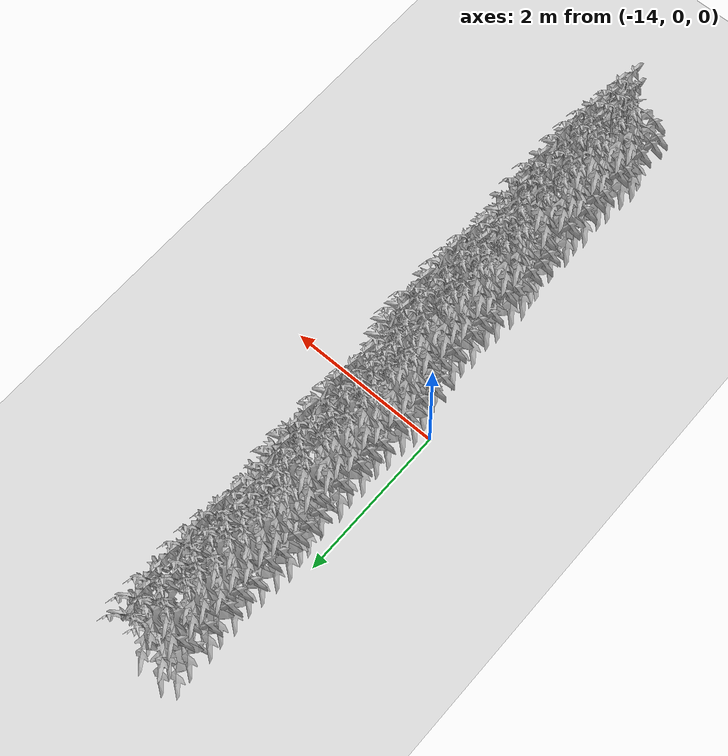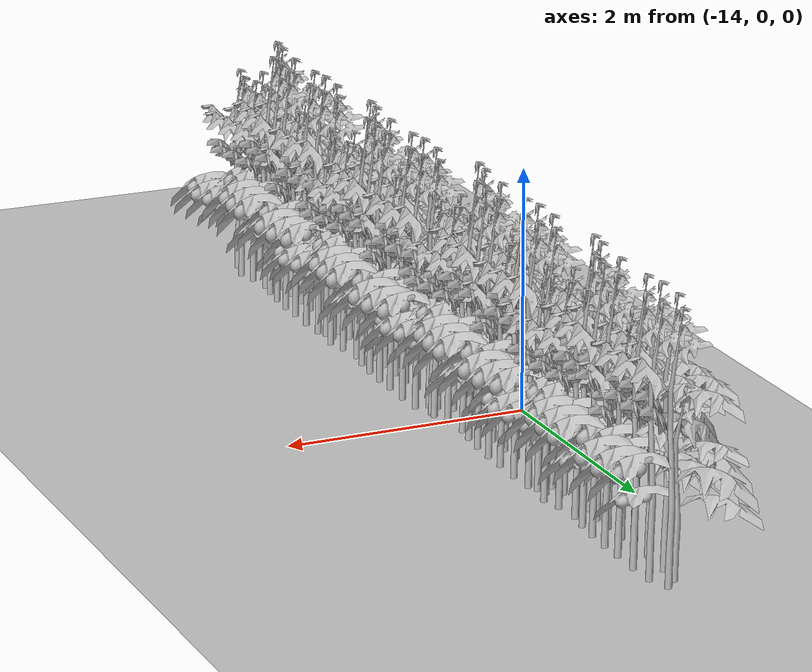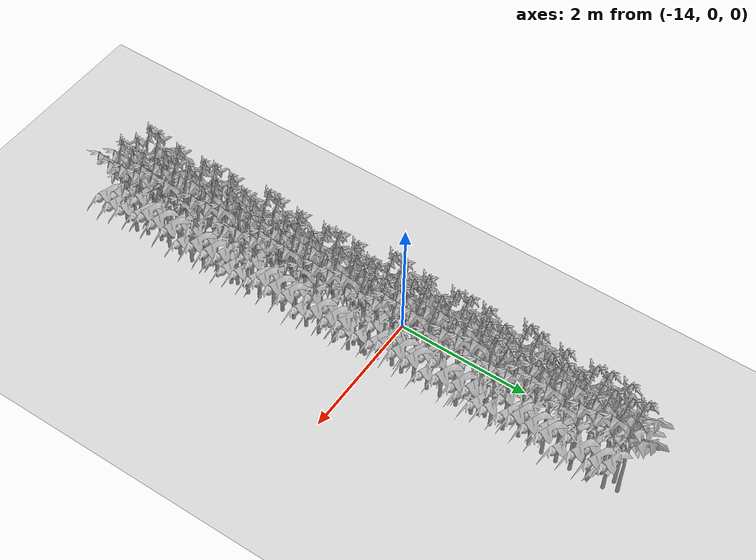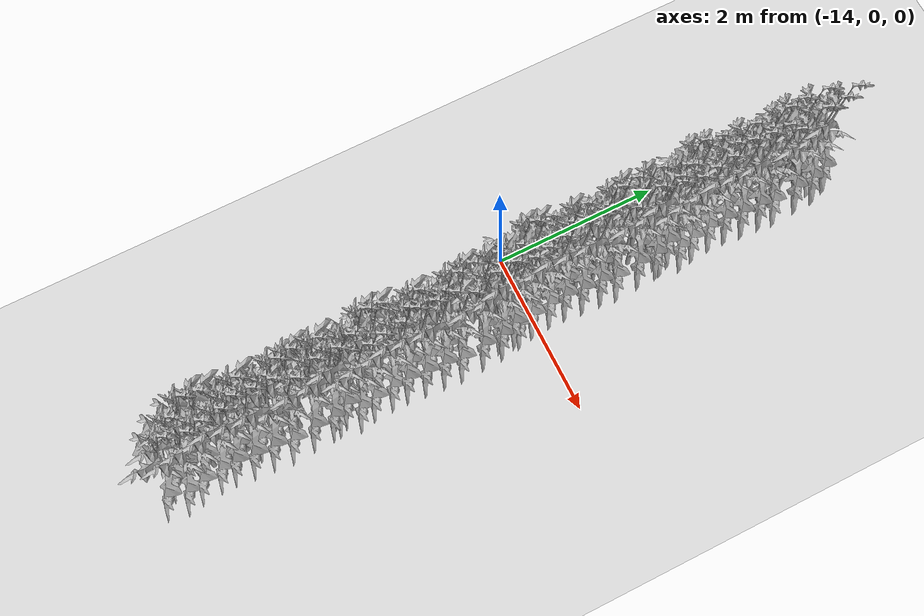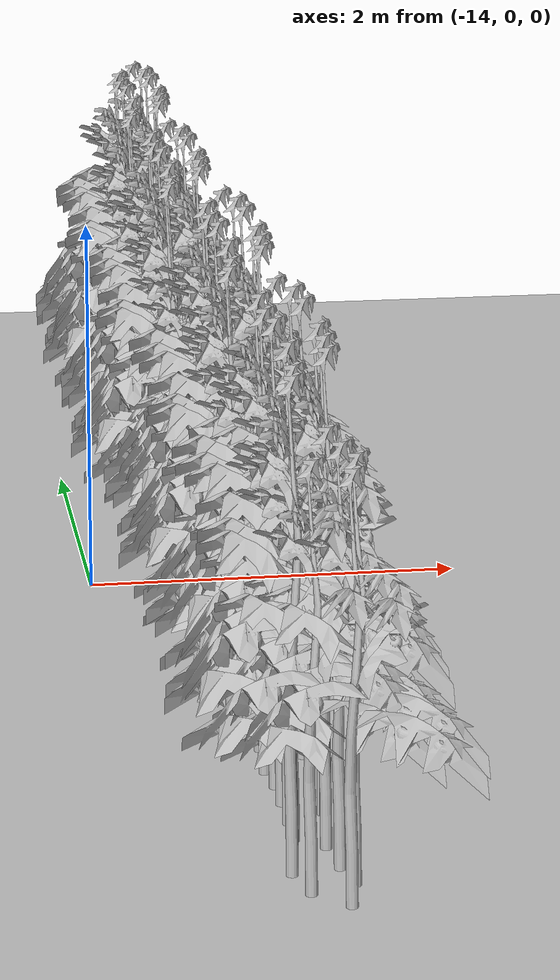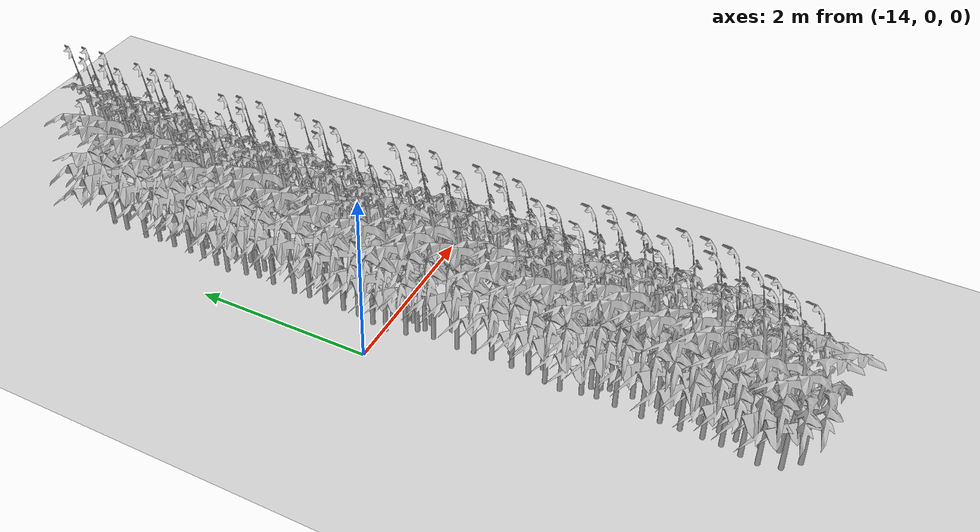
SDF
<sdf version="1.6">
 <world name="default">
  <model name="ground_plane">
   <static>1</static>
   <link name="link">
    <collision name="collision">
     <geometry><plane><normal>0 0 1</normal><size>100 100</size></plane></geometry>
     <surface>
      <contact><collide_bitmask>65535</collide_bitmask></contact>
      <friction><ode><mu>100</mu><mu2>50</mu2></ode></friction>
     </surface>
    </collision>
    <visual name="visual">
     <cast_shadows>0</cast_shadows>
     <geometry><plane><normal>0 0 1</normal><size>100 100</size></plane></geometry>
     <material>
      <script><uri>file://media/materials/scripts/gazebo.material</uri><name>Gazebo/Grey</name></script>
     </material>
    </visual>
   </link>
  </model>
  <model name="MIddle_Plant_3_8">
   <model name="MIddle_Plant_1">
    <model name="tomato_plant_big">
     <static>1</static>
     <link name="link">
      <collision name="collision">
       <pose>0 0 0 1.5708 -0 0</pose>
       <geometry><mesh><scale>0.5 0.6 0.5</scale><uri>model://stick/meshes/stick.dae</uri></mesh></geometry>
      </collision>
      <visual name="visual">
       <geometry>
        <mesh><scale>5e-06 5e-06 7e-06</scale><uri>model://tomato_plant_big/meshes/tomato-plant.dae</uri></mesh>
       </geometry>
      </visual>
     </link>
     <pose>-0.144318 -0.693607 -0 0 -0 0</pose>
    </model>
    <model name="tomato_plant_big_0">
     <static>1</static>
     <link name="link">
      <collision name="collision">
       <pose>0 0 0 1.5708 -0 0</pose>
       <geometry><mesh><scale>0.5 0.6 0.5</scale><uri>model://stick/meshes/stick.dae</uri></mesh></geometry>
      </collision>
      <visual name="visual">
       <geometry>
        <mesh><scale>5e-06 5e-06 7e-06</scale><uri>model://tomato_plant_big/meshes/tomato-plant.dae</uri></mesh>
       </geometry>
      </visual>
     </link>
     <pose>-0.11784 -0.519827 0 0 -0 0</pose>
    </model>
    <model name="tomato_plant_big_1">
     <static>1</static>
     <link name="link">
      <collision name="collision">
       <pose>0 0 0 1.5708 -0 0</pose>
       <geometry><mesh><scale>0.5 0.6 0.5</scale><uri>model://stick/meshes/stick.dae</uri></mesh></geometry>
      </collision>
      <visual name="visual">
       <geometry>
        <mesh><scale>5e-06 5e-06 7e-06</scale><uri>model://tomato_plant_big/meshes/tomato-plant.dae</uri></mesh>
       </geometry>
      </visual>
     </link>
     <pose>0.073755 -0.247584 0 0 -0 0</pose>
    </model>
    <model name="tomato_plant_big_10">
     <static>1</static>
     <link name="link">
      <collision name="collision">
       <pose>0 0 0 1.5708 -0 0</pose>
       <geometry><mesh><scale>0.5 0.6 0.5</scale><uri>model://stick/meshes/stick.dae</uri></mesh></geometry>
      </collision>
      <visual name="visual">
       <geometry>
        <mesh><scale>5e-06 5e-06 7e-06</scale><uri>model://tomato_plant_big/meshes/tomato-plant.dae</uri></mesh>
       </geometry>
      </visual>
     </link>
     <pose>0.037052 1.07094 0 0 -0 0</pose>
    </model>
    <model name="tomato_plant_big_2">
     <static>1</static>
     <link name="link">
      <collision name="collision">
       <pose>0 0 0 1.5708 -0 0</pose>
       <geometry><mesh><scale>0.5 0.6 0.5</scale><uri>model://stick/meshes/stick.dae</uri></mesh></geometry>
      </collision>
      <visual name="visual">
       <geometry>
        <mesh><scale>5e-06 5e-06 7e-06</scale><uri>model://tomato_plant_big/meshes/tomato-plant.dae</uri></mesh>
       </geometry>
      </visual>
     </link>
     <pose>-0.076926 -0.131165 0 0 -0 0</pose>
    </model>
    <model name="tomato_plant_big_3">
     <static>1</static>
     <link name="link">
      <collision name="collision">
       <pose>0 0 0 1.5708 -0 0</pose>
       <geometry><mesh><scale>0.5 0.6 0.5</scale><uri>model://stick/meshes/stick.dae</uri></mesh></geometry>
      </collision>
      <visual name="visual">
       <geometry>
        <mesh><scale>5e-06 5e-06 7e-06</scale><uri>model://tomato_plant_big/meshes/tomato-plant.dae</uri></mesh>
       </geometry>
      </visual>
     </link>
     <pose>0.093714 -0.038386 0 0 -0 0</pose>
    </model>
    <model name="tomato_plant_big_4">
     <static>1</static>
     <link name="link">
      <collision name="collision">
       <pose>0 0 0 1.5708 -0 0</pose>
       <geometry><mesh><scale>0.5 0.6 0.5</scale><uri>model://stick/meshes/stick.dae</uri></mesh></geometry>
      </collision>
      <visual name="visual">
       <geometry>
        <mesh><scale>5e-06 5e-06 7e-06</scale><uri>model://tomato_plant_big/meshes/tomato-plant.dae</uri></mesh>
       </geometry>
      </visual>
     </link>
     <pose>0.103117 0.184356 0 0 -0 0</pose>
    </model>
    <model name="tomato_plant_big_5">
     <static>1</static>
     <link name="link">
      <collision name="collision">
       <pose>0 0 0 1.5708 -0 0</pose>
       <geometry><mesh><scale>0.5 0.6 0.5</scale><uri>model://stick/meshes/stick.dae</uri></mesh></geometry>
      </collision>
      <visual name="visual">
       <geometry>
        <mesh><scale>5e-06 5e-06 7e-06</scale><uri>model://tomato_plant_big/meshes/tomato-plant.dae</uri></mesh>
       </geometry>
      </visual>
     </link>
     <pose>-0.074883 0.301479 0 0 -0 0</pose>
    </model>
    <model name="tomato_plant_big_6">
     <static>1</static>
     <link name="link">
      <collision name="collision">
       <pose>0 0 0 1.5708 -0 0</pose>
       <geometry><mesh><scale>0.5 0.6 0.5</scale><uri>model://stick/meshes/stick.dae</uri></mesh></geometry>
      </collision>
      <visual name="visual">
       <geometry>
        <mesh><scale>5e-06 5e-06 7e-06</scale><uri>model://tomato_plant_big/meshes/tomato-plant.dae</uri></mesh>
       </geometry>
      </visual>
     </link>
     <pose>-0.096921 0.484007 0 0 -0 0</pose>
    </model>
    <model name="tomato_plant_big_7">
     <static>1</static>
     <link name="link">
      <collision name="collision">
       <pose>0 0 0 1.5708 -0 0</pose>
       <geometry><mesh><scale>0.5 0.6 0.5</scale><uri>model://stick/meshes/stick.dae</uri></mesh></geometry>
      </collision>
      <visual name="visual">
       <geometry>
        <mesh><scale>5e-06 5e-06 7e-06</scale><uri>model://tomato_plant_big/meshes/tomato-plant.dae</uri></mesh>
       </geometry>
      </visual>
     </link>
     <pose>0.107491 0.653976 0 0 -0 0</pose>
    </model>
    <model name="tomato_plant_big_8">
     <static>1</static>
     <link name="link">
      <collision name="collision">
       <pose>0 0 0 1.5708 -0 0</pose>
       <geometry><mesh><scale>0.5 0.6 0.5</scale><uri>model://stick/meshes/stick.dae</uri></mesh></geometry>
      </collision>
      <visual name="visual">
       <geometry>
        <mesh><scale>5e-06 5e-06 7e-06</scale><uri>model://tomato_plant_big/meshes/tomato-plant.dae</uri></mesh>
       </geometry>
      </visual>
     </link>
     <pose>-0.07985 0.768549 0 0 -0 0</pose>
    </model>
    <model name="tomato_plant_big_9">
     <static>1</static>
     <link name="link">
      <collision name="collision">
       <pose>0 0 0 1.5708 -0 0</pose>
       <geometry><mesh><scale>0.5 0.6 0.5</scale><uri>model://stick/meshes/stick.dae</uri></mesh></geometry>
      </collision>
      <visual name="visual">
       <geometry>
        <mesh><scale>5e-06 5e-06 7e-06</scale><uri>model://tomato_plant_big/meshes/tomato-plant.dae</uri></mesh>
       </geometry>
      </visual>
     </link>
     <pose>0.098361 0.890852 0 0 -0 0</pose>
    </model>
    <model name="tomato_plant_medium">
     <static>1</static>
     <link name="link">
      <collision name="collision">
       <pose>0 0 0 1.5708 -0 0</pose>
       <geometry><mesh><scale>0.5 0.5 0.5</scale><uri>model://stick/meshes/stick.dae</uri></mesh></geometry>
      </collision>
      <visual name="visual">
       <geometry>
        <mesh><scale>5e-06 5e-06 6e-06</scale><uri>model://tomato_plant_medium/meshes/tomato-plant.dae</uri></mesh>
       </geometry>
      </visual>
     </link>
     <pose>0.056913 -1.05328 0 0 -0 0</pose>
    </model>
    <model name="tomato_plant_medium_0">
     <static>1</static>
     <link name="link">
      <collision name="collision">
       <pose>0 0 0 1.5708 -0 0</pose>
       <geometry><mesh><scale>0.5 0.5 0.5</scale><uri>model://stick/meshes/stick.dae</uri></mesh></geometry>
      </collision>
      <visual name="visual">
       <geometry>
        <mesh><scale>5e-06 5e-06 6e-06</scale><uri>model://tomato_plant_medium/meshes/tomato-plant.dae</uri></mesh>
       </geometry>
      </visual>
     </link>
     <pose>-0.092719 -0.905729 0 0 -0 0</pose>
    </model>
    <model name="tomato_plant_medium_1">
     <static>1</static>
     <link name="link">
      <collision name="collision">
       <pose>0 0 0 1.5708 -0 0</pose>
       <geometry><mesh><scale>0.5 0.5 0.5</scale><uri>model://stick/meshes/stick.dae</uri></mesh></geometry>
      </collision>
      <visual name="visual">
       <geometry>
        <mesh><scale>5e-06 5e-06 6e-06</scale><uri>model://tomato_plant_medium/meshes/tomato-plant.dae</uri></mesh>
       </geometry>
      </visual>
     </link>
     <pose>0.108962 -0.829637 0 0 -0 0</pose>
    </model>
    <model name="tomato_plant_medium_2">
     <static>1</static>
     <link name="link">
      <collision name="collision">
       <pose>0 0 0 1.5708 -0 0</pose>
       <geometry><mesh><scale>0.5 0.5 0.5</scale><uri>model://stick/meshes/stick.dae</uri></mesh></geometry>
      </collision>
      <visual name="visual">
       <geometry>
        <mesh><scale>5e-06 5e-06 6e-06</scale><uri>model://tomato_plant_medium/meshes/tomato-plant.dae</uri></mesh>
       </geometry>
      </visual>
     </link>
     <pose>0.071216 -0.652507 0 0 -0 0</pose>
    </model>
    <model name="tomato_plant_medium_3">
     <static>1</static>
     <link name="link">
      <collision name="collision">
       <pose>0 0 0 1.5708 -0 0</pose>
       <geometry><mesh><scale>0.5 0.5 0.5</scale><uri>model://stick/meshes/stick.dae</uri></mesh></geometry>
      </collision>
      <visual name="visual">
       <geometry>
        <mesh><scale>5e-06 5e-06 6e-06</scale><uri>model://tomato_plant_medium/meshes/tomato-plant.dae</uri></mesh>
       </geometry>
      </visual>
     </link>
     <pose>0.047335 -0.423046 0 0 -0 0</pose>
    </model>
    <model name="tomato_plant_medium_4">
     <static>1</static>
     <link name="link">
      <collision name="collision">
       <pose>0 0 0 1.5708 -0 0</pose>
       <geometry><mesh><scale>0.5 0.5 0.5</scale><uri>model://stick/meshes/stick.dae</uri></mesh></geometry>
      </collision>
      <visual name="visual">
       <geometry>
        <mesh><scale>5e-06 5e-06 6e-06</scale><uri>model://tomato_plant_medium/meshes/tomato-plant.dae</uri></mesh>
       </geometry>
      </visual>
     </link>
     <pose>-0.081012 -0.320324 0 0 -0 0</pose>
    </model>
    <model name="tomato_plant_medium_5">
     <static>1</static>
     <link name="link">
      <collision name="collision">
       <pose>0 0 0 1.5708 -0 0</pose>
       <geometry><mesh><scale>0.5 0.5 0.5</scale><uri>model://stick/meshes/stick.dae</uri></mesh></geometry>
      </collision>
      <visual name="visual">
       <geometry>
        <mesh><scale>5e-06 5e-06 6e-06</scale><uri>model://tomato_plant_medium/meshes/tomato-plant.dae</uri></mesh>
       </geometry>
      </visual>
     </link>
     <pose>-0.07452 0.095988 0 0 -0 0</pose>
    </model>
    <model name="tomato_plant_medium_6">
     <static>1</static>
     <link name="link">
      <collision name="collision">
       <pose>0 0 0 1.5708 -0 0</pose>
       <geometry><mesh><scale>0.5 0.5 0.5</scale><uri>model://stick/meshes/stick.dae</uri></mesh></geometry>
      </collision>
      <visual name="visual">
       <geometry>
        <mesh><scale>5e-06 5e-06 6e-06</scale><uri>model://tomato_plant_medium/meshes/tomato-plant.dae</uri></mesh>
       </geometry>
      </visual>
     </link>
     <pose>0.101424 0.395443 0 0 -0 0</pose>
    </model>
    <model name="tomato_plant_small">
     <static>1</static>
     <link name="link">
      <collision name="collision">
       <pose>0 0 0 1.5708 -0 0</pose>
       <geometry><mesh><scale>0.5 0.45 0.5</scale><uri>model://stick/meshes/stick.dae</uri></mesh></geometry>
      </collision>
      <visual name="visual">
       <geometry>
        <mesh><scale>5e-06 5e-06 5e-06</scale><uri>model://tomato_plant_small/meshes/tomato-plant.dae</uri></mesh>
       </geometry>
      </visual>
     </link>
     <pose>-0.060351 0.969512 0 0 -0 0</pose>
    </model>
    <static>0</static>
    <pose>0.040757 1.77284 0 0 -0 0</pose>
   </model>
   <model name="MIddle_Plant_2">
    <model name="MIddle_Plant_1">
     <model name="tomato_plant_big">
      <static>1</static>
      <link name="link">
       <collision name="collision">
        <pose>0 0 0 1.5708 -0 0</pose>
        <geometry><mesh><scale>0.5 0.6 0.5</scale><uri>model://stick/meshes/stick.dae</uri></mesh></geometry>
       </collision>
       <visual name="visual">
        <geometry>
         <mesh><scale>5e-06 5e-06 7e-06</scale><uri>model://tomato_plant_big/meshes/tomato-plant.dae</uri></mesh>
        </geometry>
       </visual>
      </link>
      <pose>-0.144318 -0.693607 -0 0 -0 0</pose>
     </model>
     <model name="tomato_plant_big_0">
      <static>1</static>
      <link name="link">
       <collision name="collision">
        <pose>0 0 0 1.5708 -0 0</pose>
        <geometry><mesh><scale>0.5 0.6 0.5</scale><uri>model://stick/meshes/stick.dae</uri></mesh></geometry>
       </collision>
       <visual name="visual">
        <geometry>
         <mesh><scale>5e-06 5e-06 7e-06</scale><uri>model://tomato_plant_big/meshes/tomato-plant.dae</uri></mesh>
        </geometry>
       </visual>
      </link>
      <pose>-0.11784 -0.519827 0 0 -0 0</pose>
     </model>
     <model name="tomato_plant_big_1">
      <static>1</static>
      <link name="link">
       <collision name="collision">
        <pose>0 0 0 1.5708 -0 0</pose>
        <geometry><mesh><scale>0.5 0.6 0.5</scale><uri>model://stick/meshes/stick.dae</uri></mesh></geometry>
       </collision>
       <visual name="visual">
        <geometry>
         <mesh><scale>5e-06 5e-06 7e-06</scale><uri>model://tomato_plant_big/meshes/tomato-plant.dae</uri></mesh>
        </geometry>
       </visual>
      </link>
      <pose>0.073755 -0.247584 0 0 -0 0</pose>
     </model>
     <model name="tomato_plant_big_10">
      <static>1</static>
      <link name="link">
       <collision name="collision">
        <pose>0 0 0 1.5708 -0 0</pose>
        <geometry><mesh><scale>0.5 0.6 0.5</scale><uri>model://stick/meshes/stick.dae</uri></mesh></geometry>
       </collision>
       <visual name="visual">
        <geometry>
         <mesh><scale>5e-06 5e-06 7e-06</scale><uri>model://tomato_plant_big/meshes/tomato-plant.dae</uri></mesh>
        </geometry>
       </visual>
      </link>
      <pose>0.037052 1.07094 0 0 -0 0</pose>
     </model>
     <model name="tomato_plant_big_2">
      <static>1</static>
      <link name="link">
       <collision name="collision">
        <pose>0 0 0 1.5708 -0 0</pose>
        <geometry><mesh><scale>0.5 0.6 0.5</scale><uri>model://stick/meshes/stick.dae</uri></mesh></geometry>
       </collision>
       <visual name="visual">
        <geometry>
         <mesh><scale>5e-06 5e-06 7e-06</scale><uri>model://tomato_plant_big/meshes/tomato-plant.dae</uri></mesh>
        </geometry>
       </visual>
      </link>
      <pose>-0.076926 -0.131165 0 0 -0 0</pose>
     </model>
     <model name="tomato_plant_big_3">
      <static>1</static>
      <link name="link">
       <collision name="collision">
        <pose>0 0 0 1.5708 -0 0</pose>
        <geometry><mesh><scale>0.5 0.6 0.5</scale><uri>model://stick/meshes/stick.dae</uri></mesh></geometry>
       </collision>
       <visual name="visual">
        <geometry>
         <mesh><scale>5e-06 5e-06 7e-06</scale><uri>model://tomato_plant_big/meshes/tomato-plant.dae</uri></mesh>
        </geometry>
       </visual>
      </link>
      <pose>0.093714 -0.038386 0 0 -0 0</pose>
     </model>
     <model name="tomato_plant_big_4">
      <static>1</static>
      <link name="link">
       <collision name="collision">
        <pose>0 0 0 1.5708 -0 0</pose>
        <geometry><mesh><scale>0.5 0.6 0.5</scale><uri>model://stick/meshes/stick.dae</uri></mesh></geometry>
       </collision>
       <visual name="visual">
        <geometry>
         <mesh><scale>5e-06 5e-06 7e-06</scale><uri>model://tomato_plant_big/meshes/tomato-plant.dae</uri></mesh>
        </geometry>
       </visual>
      </link>
      <pose>0.103117 0.184356 0 0 -0 0</pose>
     </model>
     <model name="tomato_plant_big_5">
      <static>1</static>
      <link name="link">
       <collision name="collision">
        <pose>0 0 0 1.5708 -0 0</pose>
        <geometry><mesh><scale>0.5 0.6 0.5</scale><uri>model://stick/meshes/stick.dae</uri></mesh></geometry>
       </collision>
       <visual name="visual">
        <geometry>
         <mesh><scale>5e-06 5e-06 7e-06</scale><uri>model://tomato_plant_big/meshes/tomato-plant.dae</uri></mesh>
        </geometry>
       </visual>
      </link>
      <pose>-0.074883 0.301479 0 0 -0 0</pose>
     </model>
     <model name="tomato_plant_big_6">
      <static>1</static>
      <link name="link">
       <collision name="collision">
        <pose>0 0 0 1.5708 -0 0</pose>
        <geometry><mesh><scale>0.5 0.6 0.5</scale><uri>model://stick/meshes/stick.dae</uri></mesh></geometry>
       </collision>
       <visual name="visual">
        <geometry>
         <mesh><scale>5e-06 5e-06 7e-06</scale><uri>model://tomato_plant_big/meshes/tomato-plant.dae</uri></mesh>
        </geometry>
       </visual>
      </link>
      <pose>-0.096921 0.484007 0 0 -0 0</pose>
     </model>
     <model name="tomato_plant_big_7">
      <static>1</static>
      <link name="link">
       <collision name="collision">
        <pose>0 0 0 1.5708 -0 0</pose>
        <geometry><mesh><scale>0.5 0.6 0.5</scale><uri>model://stick/meshes/stick.dae</uri></mesh></geometry>
       </collision>
       <visual name="visual">
        <geometry>
         <mesh><scale>5e-06 5e-06 7e-06</scale><uri>model://tomato_plant_big/meshes/tomato-plant.dae</uri></mesh>
        </geometry>
       </visual>
      </link>
      <pose>0.107491 0.653976 0 0 -0 0</pose>
     </model>
     <model name="tomato_plant_big_8">
      <static>1</static>
      <link name="link">
       <collision name="collision">
        <pose>0 0 0 1.5708 -0 0</pose>
        <geometry><mesh><scale>0.5 0.6 0.5</scale><uri>model://stick/meshes/stick.dae</uri></mesh></geometry>
       </collision>
       <visual name="visual">
        <geometry>
         <mesh><scale>5e-06 5e-06 7e-06</scale><uri>model://tomato_plant_big/meshes/tomato-plant.dae</uri></mesh>
        </geometry>
       </visual>
      </link>
      <pose>-0.07985 0.768549 0 0 -0 0</pose>
     </model>
     <model name="tomato_plant_big_9">
      <static>1</static>
      <link name="link">
       <collision name="collision">
        <pose>0 0 0 1.5708 -0 0</pose>
        <geometry><mesh><scale>0.5 0.6 0.5</scale><uri>model://stick/meshes/stick.dae</uri></mesh></geometry>
       </collision>
       <visual name="visual">
        <geometry>
         <mesh><scale>5e-06 5e-06 7e-06</scale><uri>model://tomato_plant_big/meshes/tomato-plant.dae</uri></mesh>
        </geometry>
       </visual>
      </link>
      <pose>0.098361 0.890852 0 0 -0 0</pose>
     </model>
     <model name="tomato_plant_medium">
      <static>1</static>
      <link name="link">
       <collision name="collision">
        <pose>0 0 0 1.5708 -0 0</pose>
        <geometry><mesh><scale>0.5 0.5 0.5</scale><uri>model://stick/meshes/stick.dae</uri></mesh></geometry>
       </collision>
       <visual name="visual">
        <geometry>
         <mesh><scale>5e-06 5e-06 6e-06</scale><uri>model://tomato_plant_medium/meshes/tomato-plant.dae</uri></mesh>
        </geometry>
       </visual>
      </link>
      <pose>0.056913 -1.05328 0 0 -0 0</pose>
     </model>
     <model name="tomato_plant_medium_0">
      <static>1</static>
      <link name="link">
       <collision name="collision">
        <pose>0 0 0 1.5708 -0 0</pose>
        <geometry><mesh><scale>0.5 0.5 0.5</scale><uri>model://stick/meshes/stick.dae</uri></mesh></geometry>
       </collision>
       <visual name="visual">
        <geometry>
         <mesh><scale>5e-06 5e-06 6e-06</scale><uri>model://tomato_plant_medium/meshes/tomato-plant.dae</uri></mesh>
        </geometry>
       </visual>
      </link>
      <pose>-0.092719 -0.905729 0 0 -0 0</pose>
     </model>
     <model name="tomato_plant_medium_1">
      <static>1</static>
      <link name="link">
       <collision name="collision">
        <pose>0 0 0 1.5708 -0 0</pose>
        <geometry><mesh><scale>0.5 0.5 0.5</scale><uri>model://stick/meshes/stick.dae</uri></mesh></geometry>
       </collision>
       <visual name="visual">
        <geometry>
         <mesh><scale>5e-06 5e-06 6e-06</scale><uri>model://tomato_plant_medium/meshes/tomato-plant.dae</uri></mesh>
        </geometry>
       </visual>
      </link>
      <pose>0.108962 -0.829637 0 0 -0 0</pose>
     </model>
     <model name="tomato_plant_medium_2">
      <static>1</static>
      <link name="link">
       <collision name="collision">
        <pose>0 0 0 1.5708 -0 0</pose>
        <geometry><mesh><scale>0.5 0.5 0.5</scale><uri>model://stick/meshes/stick.dae</uri></mesh></geometry>
       </collision>
       <visual name="visual">
        <geometry>
         <mesh><scale>5e-06 5e-06 6e-06</scale><uri>model://tomato_plant_medium/meshes/tomato-plant.dae</uri></mesh>
        </geometry>
       </visual>
      </link>
      <pose>0.071216 -0.652507 0 0 -0 0</pose>
     </model>
     <model name="tomato_plant_medium_3">
      <static>1</static>
      <link name="link">
       <collision name="collision">
        <pose>0 0 0 1.5708 -0 0</pose>
        <geometry><mesh><scale>0.5 0.5 0.5</scale><uri>model://stick/meshes/stick.dae</uri></mesh></geometry>
       </collision>
       <visual name="visual">
        <geometry>
         <mesh><scale>5e-06 5e-06 6e-06</scale><uri>model://tomato_plant_medium/meshes/tomato-plant.dae</uri></mesh>
        </geometry>
       </visual>
      </link>
      <pose>0.047335 -0.423046 0 0 -0 0</pose>
     </model>
     <model name="tomato_plant_medium_4">
      <static>1</static>
      <link name="link">
       <collision name="collision">
        <pose>0 0 0 1.5708 -0 0</pose>
        <geometry><mesh><scale>0.5 0.5 0.5</scale><uri>model://stick/meshes/stick.dae</uri></mesh></geometry>
       </collision>
       <visual name="visual">
        <geometry>
         <mesh><scale>5e-06 5e-06 6e-06</scale><uri>model://tomato_plant_medium/meshes/tomato-plant.dae</uri></mesh>
        </geometry>
       </visual>
      </link>
      <pose>-0.081012 -0.320324 0 0 -0 0</pose>
     </model>
     <model name="tomato_plant_medium_5">
      <static>1</static>
      <link name="link">
       <collision name="collision">
        <pose>0 0 0 1.5708 -0 0</pose>
        <geometry><mesh><scale>0.5 0.5 0.5</scale><uri>model://stick/meshes/stick.dae</uri></mesh></geometry>
       </collision>
       <visual name="visual">
        <geometry>
         <mesh><scale>5e-06 5e-06 6e-06</scale><uri>model://tomato_plant_medium/meshes/tomato-plant.dae</uri></mesh>
        </geometry>
       </visual>
      </link>
      <pose>-0.07452 0.095988 0 0 -0 0</pose>
     </model>
     <model name="tomato_plant_medium_6">
      <static>1</static>
      <link name="link">
       <collision name="collision">
        <pose>0 0 0 1.5708 -0 0</pose>
        <geometry><mesh><scale>0.5 0.5 0.5</scale><uri>model://stick/meshes/stick.dae</uri></mesh></geometry>
       </collision>
       <visual name="visual">
        <geometry>
         <mesh><scale>5e-06 5e-06 6e-06</scale><uri>model://tomato_plant_medium/meshes/tomato-plant.dae</uri></mesh>
        </geometry>
       </visual>
      </link>
      <pose>0.101424 0.395443 0 0 -0 0</pose>
     </model>
     <model name="tomato_plant_small">
      <static>1</static>
      <link name="link">
       <collision name="collision">
        <pose>0 0 0 1.5708 -0 0</pose>
        <geometry><mesh><scale>0.5 0.45 0.5</scale><uri>model://stick/meshes/stick.dae</uri></mesh></geometry>
       </collision>
       <visual name="visual">
        <geometry>
         <mesh><scale>5e-06 5e-06 5e-06</scale><uri>model://tomato_plant_small/meshes/tomato-plant.dae</uri></mesh>
        </geometry>
       </visual>
      </link>
      <pose>-0.060351 0.969512 0 0 -0 0</pose>
     </model>
     <static>0</static>
     <pose>0.763113 0.028917 0 0 -0 0</pose>
    </model>
    <model name="tomato_plant_big">
     <static>1</static>
     <link name="link">
      <collision name="collision">
       <pose>0 0 0 1.5708 -0 0</pose>
       <geometry><mesh><scale>0.5 0.6 0.5</scale><uri>model://stick/meshes/stick.dae</uri></mesh></geometry>
      </collision>
      <visual name="visual">
       <geometry>
        <mesh><scale>5e-06 5e-06 7e-06</scale><uri>model://tomato_plant_big/meshes/tomato-plant.dae</uri></mesh>
       </geometry>
      </visual>
     </link>
     <pose>0.613724 -2.69399 -0 0 -0 0</pose>
    </model>
    <model name="tomato_plant_big_0">
     <static>1</static>
     <link name="link">
      <collision name="collision">
       <pose>0 0 0 1.5708 -0 0</pose>
       <geometry><mesh><scale>0.5 0.6 0.5</scale><uri>model://stick/meshes/stick.dae</uri></mesh></geometry>
      </collision>
      <visual name="visual">
       <geometry>
        <mesh><scale>5e-06 5e-06 7e-06</scale><uri>model://tomato_plant_big/meshes/tomato-plant.dae</uri></mesh>
       </geometry>
      </visual>
     </link>
     <pose>0.640202 -2.52021 0 0 -0 0</pose>
    </model>
    <model name="tomato_plant_big_1">
     <static>1</static>
     <link name="link">
      <collision name="collision">
       <pose>0 0 0 1.5708 -0 0</pose>
       <geometry><mesh><scale>0.5 0.6 0.5</scale><uri>model://stick/meshes/stick.dae</uri></mesh></geometry>
      </collision>
      <visual name="visual">
       <geometry>
        <mesh><scale>5e-06 5e-06 7e-06</scale><uri>model://tomato_plant_big/meshes/tomato-plant.dae</uri></mesh>
       </geometry>
      </visual>
     </link>
     <pose>0.831797 -2.24797 0 0 -0 0</pose>
    </model>
    <model name="tomato_plant_big_10">
     <static>1</static>
     <link name="link">
      <collision name="collision">
       <pose>0 0 0 1.5708 -0 0</pose>
       <geometry><mesh><scale>0.5 0.6 0.5</scale><uri>model://stick/meshes/stick.dae</uri></mesh></geometry>
      </collision>
      <visual name="visual">
       <geometry>
        <mesh><scale>5e-06 5e-06 7e-06</scale><uri>model://tomato_plant_big/meshes/tomato-plant.dae</uri></mesh>
       </geometry>
      </visual>
     </link>
     <pose>0.795094 -0.929446 0 0 -0 0</pose>
    </model>
    <model name="tomato_plant_big_2">
     <static>1</static>
     <link name="link">
      <collision name="collision">
       <pose>0 0 0 1.5708 -0 0</pose>
       <geometry><mesh><scale>0.5 0.6 0.5</scale><uri>model://stick/meshes/stick.dae</uri></mesh></geometry>
      </collision>
      <visual name="visual">
       <geometry>
        <mesh><scale>5e-06 5e-06 7e-06</scale><uri>model://tomato_plant_big/meshes/tomato-plant.dae</uri></mesh>
       </geometry>
      </visual>
     </link>
     <pose>0.681116 -2.13155 0 0 -0 0</pose>
    </model>
    <model name="tomato_plant_big_3">
     <static>1</static>
     <link name="link">
      <collision name="collision">
       <pose>0 0 0 1.5708 -0 0</pose>
       <geometry><mesh><scale>0.5 0.6 0.5</scale><uri>model://stick/meshes/stick.dae</uri></mesh></geometry>
      </collision>
      <visual name="visual">
       <geometry>
        <mesh><scale>5e-06 5e-06 7e-06</scale><uri>model://tomato_plant_big/meshes/tomato-plant.dae</uri></mesh>
       </geometry>
      </visual>
     </link>
     <pose>0.851755 -2.03877 0 0 -0 0</pose>
    </model>
    <model name="tomato_plant_big_4">
     <static>1</static>
     <link name="link">
      <collision name="collision">
       <pose>0 0 0 1.5708 -0 0</pose>
       <geometry><mesh><scale>0.5 0.6 0.5</scale><uri>model://stick/meshes/stick.dae</uri></mesh></geometry>
      </collision>
      <visual name="visual">
       <geometry>
        <mesh><scale>5e-06 5e-06 7e-06</scale><uri>model://tomato_plant_big/meshes/tomato-plant.dae</uri></mesh>
       </geometry>
      </visual>
     </link>
     <pose>0.861158 -1.81603 0 0 -0 0</pose>
    </model>
    <model name="tomato_plant_big_5">
     <static>1</static>
     <link name="link">
      <collision name="collision">
       <pose>0 0 0 1.5708 -0 0</pose>
       <geometry><mesh><scale>0.5 0.6 0.5</scale><uri>model://stick/meshes/stick.dae</uri></mesh></geometry>
      </collision>
      <visual name="visual">
       <geometry>
        <mesh><scale>5e-06 5e-06 7e-06</scale><uri>model://tomato_plant_big/meshes/tomato-plant.dae</uri></mesh>
       </geometry>
      </visual>
     </link>
     <pose>0.683158 -1.69891 0 0 -0 0</pose>
    </model>
    <model name="tomato_plant_big_6">
     <static>1</static>
     <link name="link">
      <collision name="collision">
       <pose>0 0 0 1.5708 -0 0</pose>
       <geometry><mesh><scale>0.5 0.6 0.5</scale><uri>model://stick/meshes/stick.dae</uri></mesh></geometry>
      </collision>
      <visual name="visual">
       <geometry>
        <mesh><scale>5e-06 5e-06 7e-06</scale><uri>model://tomato_plant_big/meshes/tomato-plant.dae</uri></mesh>
       </geometry>
      </visual>
     </link>
     <pose>0.66112 -1.51638 0 0 -0 0</pose>
    </model>
    <model name="tomato_plant_big_7">
     <static>1</static>
     <link name="link">
      <collision name="collision">
       <pose>0 0 0 1.5708 -0 0</pose>
       <geometry><mesh><scale>0.5 0.6 0.5</scale><uri>model://stick/meshes/stick.dae</uri></mesh></geometry>
      </collision>
      <visual name="visual">
       <geometry>
        <mesh><scale>5e-06 5e-06 7e-06</scale><uri>model://tomato_plant_big/meshes/tomato-plant.dae</uri></mesh>
       </geometry>
      </visual>
     </link>
     <pose>0.865532 -1.34641 0 0 -0 0</pose>
    </model>
    <model name="tomato_plant_big_8">
     <static>1</static>
     <link name="link">
      <collision name="collision">
       <pose>0 0 0 1.5708 -0 0</pose>
       <geometry><mesh><scale>0.5 0.6 0.5</scale><uri>model://stick/meshes/stick.dae</uri></mesh></geometry>
      </collision>
      <visual name="visual">
       <geometry>
        <mesh><scale>5e-06 5e-06 7e-06</scale><uri>model://tomato_plant_big/meshes/tomato-plant.dae</uri></mesh>
       </geometry>
      </visual>
     </link>
     <pose>0.678192 -1.23184 0 0 -0 0</pose>
    </model>
    <model name="tomato_plant_big_9">
     <static>1</static>
     <link name="link">
      <collision name="collision">
       <pose>0 0 0 1.5708 -0 0</pose>
       <geometry><mesh><scale>0.5 0.6 0.5</scale><uri>model://stick/meshes/stick.dae</uri></mesh></geometry>
      </collision>
      <visual name="visual">
       <geometry>
        <mesh><scale>5e-06 5e-06 7e-06</scale><uri>model://tomato_plant_big/meshes/tomato-plant.dae</uri></mesh>
       </geometry>
      </visual>
     </link>
     <pose>0.856402 -1.10953 0 0 -0 0</pose>
    </model>
    <model name="tomato_plant_medium">
     <static>1</static>
     <link name="link">
      <collision name="collision">
       <pose>0 0 0 1.5708 -0 0</pose>
       <geometry><mesh><scale>0.5 0.5 0.5</scale><uri>model://stick/meshes/stick.dae</uri></mesh></geometry>
      </collision>
      <visual name="visual">
       <geometry>
        <mesh><scale>5e-06 5e-06 6e-06</scale><uri>model://tomato_plant_medium/meshes/tomato-plant.dae</uri></mesh>
       </geometry>
      </visual>
     </link>
     <pose>0.814955 -3.05367 0 0 -0 0</pose>
    </model>
    <model name="tomato_plant_medium_0">
     <static>1</static>
     <link name="link">
      <collision name="collision">
       <pose>0 0 0 1.5708 -0 0</pose>
       <geometry><mesh><scale>0.5 0.5 0.5</scale><uri>model://stick/meshes/stick.dae</uri></mesh></geometry>
      </collision>
      <visual name="visual">
       <geometry>
        <mesh><scale>5e-06 5e-06 6e-06</scale><uri>model://tomato_plant_medium/meshes/tomato-plant.dae</uri></mesh>
       </geometry>
      </visual>
     </link>
     <pose>0.665322 -2.90611 0 0 -0 0</pose>
    </model>
    <model name="tomato_plant_medium_1">
     <static>1</static>
     <link name="link">
      <collision name="collision">
       <pose>0 0 0 1.5708 -0 0</pose>
       <geometry><mesh><scale>0.5 0.5 0.5</scale><uri>model://stick/meshes/stick.dae</uri></mesh></geometry>
      </collision>
      <visual name="visual">
       <geometry>
        <mesh><scale>5e-06 5e-06 6e-06</scale><uri>model://tomato_plant_medium/meshes/tomato-plant.dae</uri></mesh>
       </geometry>
      </visual>
     </link>
     <pose>0.867004 -2.83002 0 0 -0 0</pose>
    </model>
    <model name="tomato_plant_medium_2">
     <static>1</static>
     <link name="link">
      <collision name="collision">
       <pose>0 0 0 1.5708 -0 0</pose>
       <geometry><mesh><scale>0.5 0.5 0.5</scale><uri>model://stick/meshes/stick.dae</uri></mesh></geometry>
      </collision>
      <visual name="visual">
       <geometry>
        <mesh><scale>5e-06 5e-06 6e-06</scale><uri>model://tomato_plant_medium/meshes/tomato-plant.dae</uri></mesh>
       </geometry>
      </visual>
     </link>
     <pose>0.829257 -2.65289 0 0 -0 0</pose>
    </model>
    <model name="tomato_plant_medium_3">
     <static>1</static>
     <link name="link">
      <collision name="collision">
       <pose>0 0 0 1.5708 -0 0</pose>
       <geometry><mesh><scale>0.5 0.5 0.5</scale><uri>model://stick/meshes/stick.dae</uri></mesh></geometry>
      </collision>
      <visual name="visual">
       <geometry>
        <mesh><scale>5e-06 5e-06 6e-06</scale><uri>model://tomato_plant_medium/meshes/tomato-plant.dae</uri></mesh>
       </geometry>
      </visual>
     </link>
     <pose>0.805376 -2.42343 0 0 -0 0</pose>
    </model>
    <model name="tomato_plant_medium_4">
     <static>1</static>
     <link name="link">
      <collision name="collision">
       <pose>0 0 0 1.5708 -0 0</pose>
       <geometry><mesh><scale>0.5 0.5 0.5</scale><uri>model://stick/meshes/stick.dae</uri></mesh></geometry>
      </collision>
      <visual name="visual">
       <geometry>
        <mesh><scale>5e-06 5e-06 6e-06</scale><uri>model://tomato_plant_medium/meshes/tomato-plant.dae</uri></mesh>
       </geometry>
      </visual>
     </link>
     <pose>0.67703 -2.32071 0 0 -0 0</pose>
    </model>
    <model name="tomato_plant_medium_5">
     <static>1</static>
     <link name="link">
      <collision name="collision">
       <pose>0 0 0 1.5708 -0 0</pose>
       <geometry><mesh><scale>0.5 0.5 0.5</scale><uri>model://stick/meshes/stick.dae</uri></mesh></geometry>
      </collision>
      <visual name="visual">
       <geometry>
        <mesh><scale>5e-06 5e-06 6e-06</scale><uri>model://tomato_plant_medium/meshes/tomato-plant.dae</uri></mesh>
       </geometry>
      </visual>
     </link>
     <pose>0.683522 -1.9044 0 0 -0 0</pose>
    </model>
    <model name="tomato_plant_medium_6">
     <static>1</static>
     <link name="link">
      <collision name="collision">
       <pose>0 0 0 1.5708 -0 0</pose>
       <geometry><mesh><scale>0.5 0.5 0.5</scale><uri>model://stick/meshes/stick.dae</uri></mesh></geometry>
      </collision>
      <visual name="visual">
       <geometry>
        <mesh><scale>5e-06 5e-06 6e-06</scale><uri>model://tomato_plant_medium/meshes/tomato-plant.dae</uri></mesh>
       </geometry>
      </visual>
     </link>
     <pose>0.859466 -1.60494 0 0 -0 0</pose>
    </model>
    <model name="tomato_plant_small">
     <static>1</static>
     <link name="link">
      <collision name="collision">
       <pose>0 0 0 1.5708 -0 0</pose>
       <geometry><mesh><scale>0.5 0.45 0.5</scale><uri>model://stick/meshes/stick.dae</uri></mesh></geometry>
      </collision>
      <visual name="visual">
       <geometry>
        <mesh><scale>5e-06 5e-06 5e-06</scale><uri>model://tomato_plant_small/meshes/tomato-plant.dae</uri></mesh>
       </geometry>
      </visual>
     </link>
     <pose>0.697691 -1.03087 0 0 -0 0</pose>
    </model>
    <static>0</static>
    <pose>-0.78485 5.73439 0 0 -0 0</pose>
   </model>
   <model name="tomato_plant_big">
    <static>1</static>
    <link name="link">
     <collision name="collision">
      <pose>0 0 0 1.5708 -0 0</pose>
      <geometry><mesh><scale>0.5 0.6 0.5</scale><uri>model://stick/meshes/stick.dae</uri></mesh></geometry>
     </collision>
     <visual name="visual">
      <geometry>
       <mesh><scale>5e-06 5e-06 7e-06</scale><uri>model://tomato_plant_big/meshes/tomato-plant.dae</uri></mesh>
      </geometry>
     </visual>
    </link>
    <pose>-0.108632 -0.950068 -0 0 -0 0</pose>
   </model>
   <model name="tomato_plant_big_0">
    <static>1</static>
    <link name="link">
     <collision name="collision">
      <pose>0 0 0 1.5708 -0 0</pose>
      <geometry><mesh><scale>0.5 0.6 0.5</scale><uri>model://stick/meshes/stick.dae</uri></mesh></geometry>
     </collision>
     <visual name="visual">
      <geometry>
       <mesh><scale>5e-06 5e-06 7e-06</scale><uri>model://tomato_plant_big/meshes/tomato-plant.dae</uri></mesh>
      </geometry>
     </visual>
    </link>
    <pose>-0.082154 -0.776288 0 0 -0 0</pose>
   </model>
   <model name="tomato_plant_big_1">
    <static>1</static>
    <link name="link">
     <collision name="collision">
      <pose>0 0 0 1.5708 -0 0</pose>
      <geometry><mesh><scale>0.5 0.6 0.5</scale><uri>model://stick/meshes/stick.dae</uri></mesh></geometry>
     </collision>
     <visual name="visual">
      <geometry>
       <mesh><scale>5e-06 5e-06 7e-06</scale><uri>model://tomato_plant_big/meshes/tomato-plant.dae</uri></mesh>
      </geometry>
     </visual>
    </link>
    <pose>0.109441 -0.504045 0 0 -0 0</pose>
   </model>
   <model name="tomato_plant_big_10">
    <static>1</static>
    <link name="link">
     <collision name="collision">
      <pose>0 0 0 1.5708 -0 0</pose>
      <geometry><mesh><scale>0.5 0.6 0.5</scale><uri>model://stick/meshes/stick.dae</uri></mesh></geometry>
     </collision>
     <visual name="visual">
      <geometry>
       <mesh><scale>5e-06 5e-06 7e-06</scale><uri>model://tomato_plant_big/meshes/tomato-plant.dae</uri></mesh>
      </geometry>
     </visual>
    </link>
    <pose>0.072738 0.814477 0 0 -0 0</pose>
   </model>
   <model name="tomato_plant_big_2">
    <static>1</static>
    <link name="link">
     <collision name="collision">
      <pose>0 0 0 1.5708 -0 0</pose>
      <geometry><mesh><scale>0.5 0.6 0.5</scale><uri>model://stick/meshes/stick.dae</uri></mesh></geometry>
     </collision>
     <visual name="visual">
      <geometry>
       <mesh><scale>5e-06 5e-06 7e-06</scale><uri>model://tomato_plant_big/meshes/tomato-plant.dae</uri></mesh>
      </geometry>
     </visual>
    </link>
    <pose>-0.04124 -0.387626 0 0 -0 0</pose>
   </model>
   <model name="tomato_plant_big_3">
    <static>1</static>
    <link name="link">
     <collision name="collision">
      <pose>0 0 0 1.5708 -0 0</pose>
      <geometry><mesh><scale>0.5 0.6 0.5</scale><uri>model://stick/meshes/stick.dae</uri></mesh></geometry>
     </collision>
     <visual name="visual">
      <geometry>
       <mesh><scale>5e-06 5e-06 7e-06</scale><uri>model://tomato_plant_big/meshes/tomato-plant.dae</uri></mesh>
      </geometry>
     </visual>
    </link>
    <pose>0.129399 -0.294847 0 0 -0 0</pose>
   </model>
   <model name="tomato_plant_big_4">
    <static>1</static>
    <link name="link">
     <collision name="collision">
      <pose>0 0 0 1.5708 -0 0</pose>
      <geometry><mesh><scale>0.5 0.6 0.5</scale><uri>model://stick/meshes/stick.dae</uri></mesh></geometry>
     </collision>
     <visual name="visual">
      <geometry>
       <mesh><scale>5e-06 5e-06 7e-06</scale><uri>model://tomato_plant_big/meshes/tomato-plant.dae</uri></mesh>
      </geometry>
     </visual>
    </link>
    <pose>0.138802 -0.072105 0 0 -0 0</pose>
   </model>
   <model name="tomato_plant_big_5">
    <static>1</static>
    <link name="link">
     <collision name="collision">
      <pose>0 0 0 1.5708 -0 0</pose>
      <geometry><mesh><scale>0.5 0.6 0.5</scale><uri>model://stick/meshes/stick.dae</uri></mesh></geometry>
     </collision>
     <visual name="visual">
      <geometry>
       <mesh><scale>5e-06 5e-06 7e-06</scale><uri>model://tomato_plant_big/meshes/tomato-plant.dae</uri></mesh>
      </geometry>
     </visual>
    </link>
    <pose>-0.039198 0.045018 0 0 -0 0</pose>
   </model>
   <model name="tomato_plant_big_6">
    <static>1</static>
    <link name="link">
     <collision name="collision">
      <pose>0 0 0 1.5708 -0 0</pose>
      <geometry><mesh><scale>0.5 0.6 0.5</scale><uri>model://stick/meshes/stick.dae</uri></mesh></geometry>
     </collision>
     <visual name="visual">
      <geometry>
       <mesh><scale>5e-06 5e-06 7e-06</scale><uri>model://tomato_plant_big/meshes/tomato-plant.dae</uri></mesh>
      </geometry>
     </visual>
    </link>
    <pose>-0.061236 0.227546 0 0 -0 0</pose>
   </model>
   <model name="tomato_plant_big_7">
    <static>1</static>
    <link name="link">
     <collision name="collision">
      <pose>0 0 0 1.5708 -0 0</pose>
      <geometry><mesh><scale>0.5 0.6 0.5</scale><uri>model://stick/meshes/stick.dae</uri></mesh></geometry>
     </collision>
     <visual name="visual">
      <geometry>
       <mesh><scale>5e-06 5e-06 7e-06</scale><uri>model://tomato_plant_big/meshes/tomato-plant.dae</uri></mesh>
      </geometry>
     </visual>
    </link>
    <pose>0.143176 0.397515 0 0 -0 0</pose>
   </model>
   <model name="tomato_plant_big_8">
    <static>1</static>
    <link name="link">
     <collision name="collision">
      <pose>0 0 0 1.5708 -0 0</pose>
      <geometry><mesh><scale>0.5 0.6 0.5</scale><uri>model://stick/meshes/stick.dae</uri></mesh></geometry>
     </collision>
     <visual name="visual">
      <geometry>
       <mesh><scale>5e-06 5e-06 7e-06</scale><uri>model://tomato_plant_big/meshes/tomato-plant.dae</uri></mesh>
      </geometry>
     </visual>
    </link>
    <pose>-0.044164 0.512088 0 0 -0 0</pose>
   </model>
   <model name="tomato_plant_big_9">
    <static>1</static>
    <link name="link">
     <collision name="collision">
      <pose>0 0 0 1.5708 -0 0</pose>
      <geometry><mesh><scale>0.5 0.6 0.5</scale><uri>model://stick/meshes/stick.dae</uri></mesh></geometry>
     </collision>
     <visual name="visual">
      <geometry>
       <mesh><scale>5e-06 5e-06 7e-06</scale><uri>model://tomato_plant_big/meshes/tomato-plant.dae</uri></mesh>
      </geometry>
     </visual>
    </link>
    <pose>0.134046 0.634391 0 0 -0 0</pose>
   </model>
   <model name="tomato_plant_medium">
    <static>1</static>
    <link name="link">
     <collision name="collision">
      <pose>0 0 0 1.5708 -0 0</pose>
      <geometry><mesh><scale>0.5 0.5 0.5</scale><uri>model://stick/meshes/stick.dae</uri></mesh></geometry>
     </collision>
     <visual name="visual">
      <geometry>
       <mesh><scale>5e-06 5e-06 6e-06</scale><uri>model://tomato_plant_medium/meshes/tomato-plant.dae</uri></mesh>
      </geometry>
     </visual>
    </link>
    <pose>0.092599 -1.30974 0 0 -0 0</pose>
   </model>
   <model name="tomato_plant_medium_0">
    <static>1</static>
    <link name="link">
     <collision name="collision">
      <pose>0 0 0 1.5708 -0 0</pose>
      <geometry><mesh><scale>0.5 0.5 0.5</scale><uri>model://stick/meshes/stick.dae</uri></mesh></geometry>
     </collision>
     <visual name="visual">
      <geometry>
       <mesh><scale>5e-06 5e-06 6e-06</scale><uri>model://tomato_plant_medium/meshes/tomato-plant.dae</uri></mesh>
      </geometry>
     </visual>
    </link>
    <pose>-0.057034 -1.16219 0 0 -0 0</pose>
   </model>
   <model name="tomato_plant_medium_1">
    <static>1</static>
    <link name="link">
     <collision name="collision">
      <pose>0 0 0 1.5708 -0 0</pose>
      <geometry><mesh><scale>0.5 0.5 0.5</scale><uri>model://stick/meshes/stick.dae</uri></mesh></geometry>
     </collision>
     <visual name="visual">
      <geometry>
       <mesh><scale>5e-06 5e-06 6e-06</scale><uri>model://tomato_plant_medium/meshes/tomato-plant.dae</uri></mesh>
      </geometry>
     </visual>
    </link>
    <pose>0.144648 -1.0861 0 0 -0 0</pose>
   </model>
   <model name="tomato_plant_medium_2">
    <static>1</static>
    <link name="link">
     <collision name="collision">
      <pose>0 0 0 1.5708 -0 0</pose>
      <geometry><mesh><scale>0.5 0.5 0.5</scale><uri>model://stick/meshes/stick.dae</uri></mesh></geometry>
     </collision>
     <visual name="visual">
      <geometry>
       <mesh><scale>5e-06 5e-06 6e-06</scale><uri>model://tomato_plant_medium/meshes/tomato-plant.dae</uri></mesh>
      </geometry>
     </visual>
    </link>
    <pose>0.106901 -0.908968 0 0 -0 0</pose>
   </model>
   <model name="tomato_plant_medium_3">
    <static>1</static>
    <link name="link">
     <collision name="collision">
      <pose>0 0 0 1.5708 -0 0</pose>
      <geometry><mesh><scale>0.5 0.5 0.5</scale><uri>model://stick/meshes/stick.dae</uri></mesh></geometry>
     </collision>
     <visual name="visual">
      <geometry>
       <mesh><scale>5e-06 5e-06 6e-06</scale><uri>model://tomato_plant_medium/meshes/tomato-plant.dae</uri></mesh>
      </geometry>
     </visual>
    </link>
    <pose>0.08302 -0.679508 0 0 -0 0</pose>
   </model>
   <model name="tomato_plant_medium_4">
    <static>1</static>
    <link name="link">
     <collision name="collision">
      <pose>0 0 0 1.5708 -0 0</pose>
      <geometry><mesh><scale>0.5 0.5 0.5</scale><uri>model://stick/meshes/stick.dae</uri></mesh></geometry>
     </collision>
     <visual name="visual">
      <geometry>
       <mesh><scale>5e-06 5e-06 6e-06</scale><uri>model://tomato_plant_medium/meshes/tomato-plant.dae</uri></mesh>
      </geometry>
     </visual>
    </link>
    <pose>-0.045326 -0.576785 0 0 -0 0</pose>
   </model>
   <model name="tomato_plant_medium_5">
    <static>1</static>
    <link name="link">
     <collision name="collision">
      <pose>0 0 0 1.5708 -0 0</pose>
      <geometry><mesh><scale>0.5 0.5 0.5</scale><uri>model://stick/meshes/stick.dae</uri></mesh></geometry>
     </collision>
     <visual name="visual">
      <geometry>
       <mesh><scale>5e-06 5e-06 6e-06</scale><uri>model://tomato_plant_medium/meshes/tomato-plant.dae</uri></mesh>
      </geometry>
     </visual>
    </link>
    <pose>-0.038834 -0.160473 0 0 -0 0</pose>
   </model>
   <model name="tomato_plant_medium_6">
    <static>1</static>
    <link name="link">
     <collision name="collision">
      <pose>0 0 0 1.5708 -0 0</pose>
      <geometry><mesh><scale>0.5 0.5 0.5</scale><uri>model://stick/meshes/stick.dae</uri></mesh></geometry>
     </collision>
     <visual name="visual">
      <geometry>
       <mesh><scale>5e-06 5e-06 6e-06</scale><uri>model://tomato_plant_medium/meshes/tomato-plant.dae</uri></mesh>
      </geometry>
     </visual>
    </link>
    <pose>0.13711 0.138982 0 0 -0 0</pose>
   </model>
   <model name="tomato_plant_small">
    <static>1</static>
    <link name="link">
     <collision name="collision">
      <pose>0 0 0 1.5708 -0 0</pose>
      <geometry><mesh><scale>0.5 0.45 0.5</scale><uri>model://stick/meshes/stick.dae</uri></mesh></geometry>
     </collision>
     <visual name="visual">
      <geometry>
       <mesh><scale>5e-06 5e-06 5e-06</scale><uri>model://tomato_plant_small/meshes/tomato-plant.dae</uri></mesh>
      </geometry>
     </visual>
    </link>
    <pose>-0.024665 0.713051 0 0 -0 0</pose>
   </model>
   <static>0</static>
   <pose>-13.3809 -3.07946 0 0 -0 0</pose>
  </model>
 </world>
</sdf>
